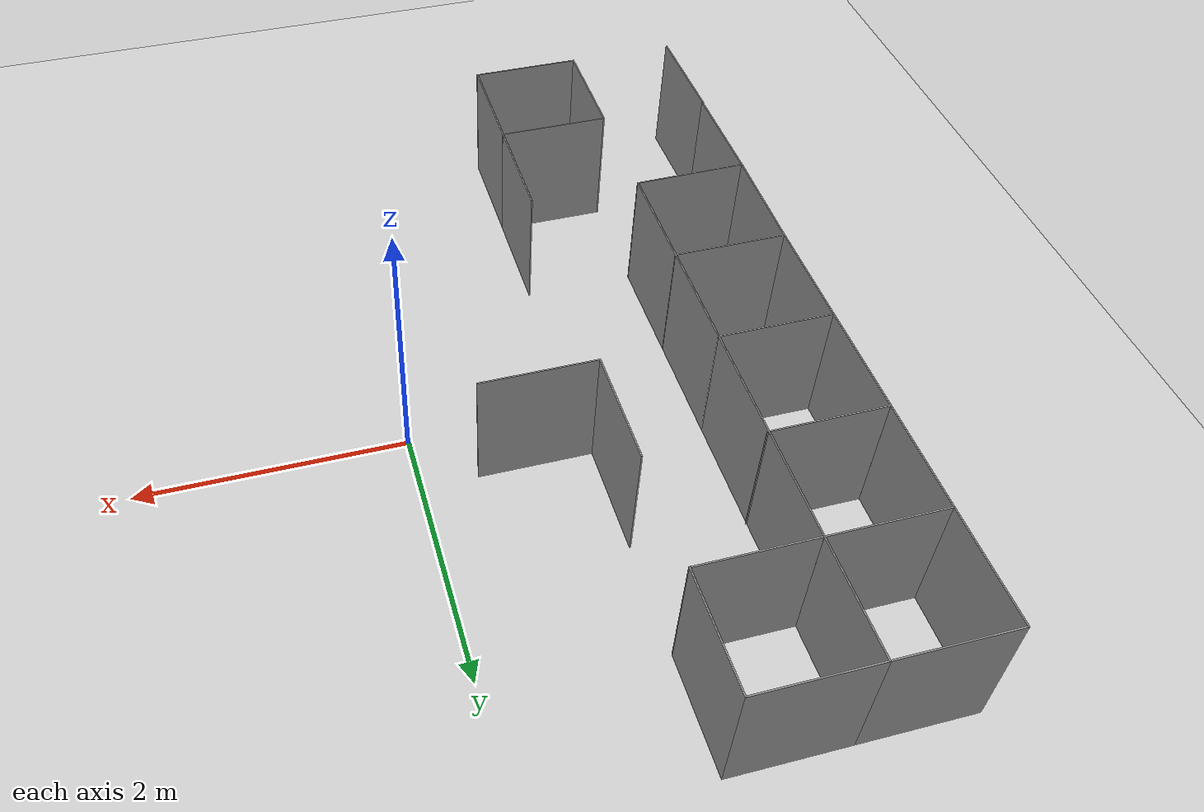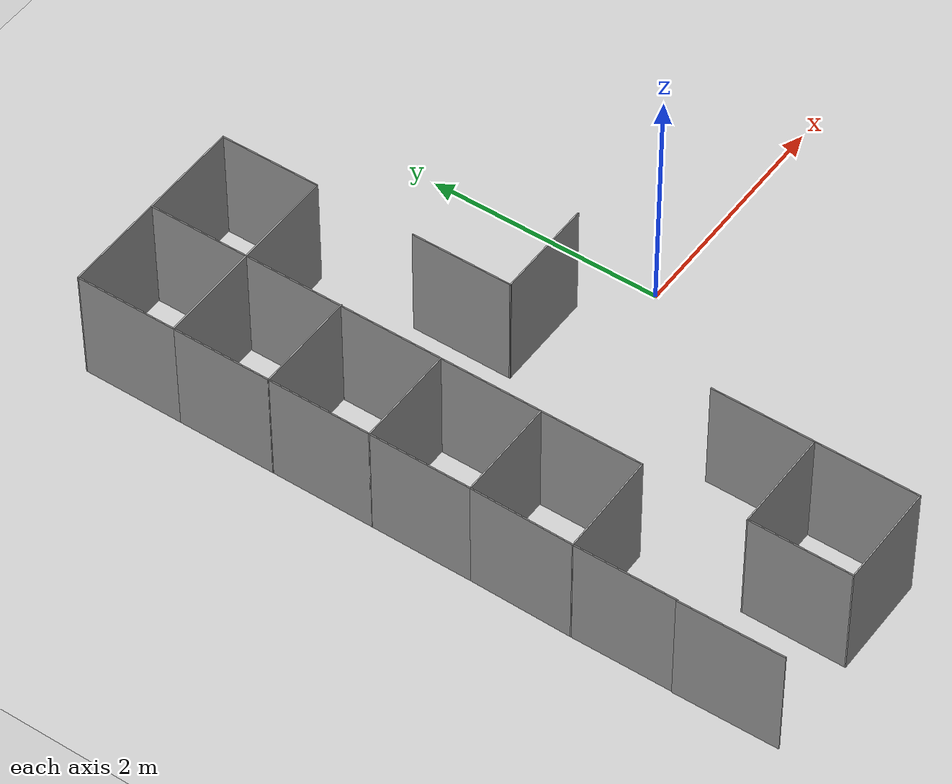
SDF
<sdf version="1.7">
 <world name="default">
  <include><uri>model://sun</uri></include>
  <include><uri>model://ground_plane</uri></include>
  <model name="Lab1">
   <link name="Wall_100">
    <pose>-2.54637 0.424965 0 0 -0 0</pose>
    <visual name="Wall_100_Visual">
     <pose>0 0 0.5 0 -0 0</pose>
     <geometry><box><size>0.86 0.01 1</size></box></geometry>
     <material>
      <script><uri>file://media/materials/scripts/gazebo.material</uri><name>Gazebo/Grey</name></script>
      <ambient>1 1 1 1</ambient>
      <shader type="pixel"/>
     </material>
     <meta><layer>0</layer></meta>
    </visual>
    <collision name="Wall_100_Collision">
     <pose>0 0 0.5 0 -0 0</pose>
     <geometry><box><size>0.86 0.01 1</size></box></geometry>
     <surface>
      <friction>
       <ode><mu>1</mu><mu2>1</mu2><fdir1>0 0 0</fdir1><slip1>0</slip1><slip2>0</slip2></ode>
       <torsional>
        <coefficient>1</coefficient>
        <patch_radius>0</patch_radius>
        <surface_radius>0</surface_radius>
        <use_patch_radius>1</use_patch_radius>
        <ode><slip>0</slip></ode>
       </torsional>
      </friction>
      <bounce><restitution_coefficient>0</restitution_coefficient><threshold>1e+06</threshold></bounce>
      <contact>
       <collide_without_contact>0</collide_without_contact>
       <collide_without_contact_bitmask>1</collide_without_contact_bitmask>
       <collide_bitmask>1</collide_bitmask>
       <ode>
        <soft_cfm>0</soft_cfm>
        <soft_erp>0.2</soft_erp>
        <kp>1e+13</kp>
        <kd>1</kd>
        <max_vel>0.01</max_vel>
        <min_depth>0</min_depth>
       </ode>
       <bullet>
        <split_impulse>1</split_impulse>
        <split_impulse_penetration_threshold>-0.01</split_impulse_penetration_threshold>
        <soft_cfm>0</soft_cfm>
        <soft_erp>0.2</soft_erp>
        <kp>1e+13</kp>
        <kd>1</kd>
       </bullet>
      </contact>
     </surface>
    </collision>
   </link>
   <link name="Wall_101">
    <pose>-2.12161 0.858205 0 0 -0 1.57135</pose>
    <visual name="Wall_101_Visual">
     <pose>0 0 0.5 0 -0 0</pose>
     <geometry><box><size>0.876839 0.01 1</size></box></geometry>
     <material>
      <script><uri>file://media/materials/scripts/gazebo.material</uri><name>Gazebo/Grey</name></script>
      <ambient>1 1 1 1</ambient>
      <shader type="pixel"/>
     </material>
     <meta><layer>0</layer></meta>
    </visual>
    <collision name="Wall_101_Collision">
     <pose>0 0 0.5 0 -0 0</pose>
     <geometry><box><size>0.876839 0.01 1</size></box></geometry>
     <surface>
      <friction>
       <ode><mu>1</mu><mu2>1</mu2><fdir1>0 0 0</fdir1><slip1>0</slip1><slip2>0</slip2></ode>
       <torsional>
        <coefficient>1</coefficient>
        <patch_radius>0</patch_radius>
        <surface_radius>0</surface_radius>
        <use_patch_radius>1</use_patch_radius>
        <ode><slip>0</slip></ode>
       </torsional>
      </friction>
      <bounce><restitution_coefficient>0</restitution_coefficient><threshold>1e+06</threshold></bounce>
      <contact>
       <collide_without_contact>0</collide_without_contact>
       <collide_without_contact_bitmask>1</collide_without_contact_bitmask>
       <collide_bitmask>1</collide_bitmask>
       <ode>
        <soft_cfm>0</soft_cfm>
        <soft_erp>0.2</soft_erp>
        <kp>1e+13</kp>
        <kd>1</kd>
        <max_vel>0.01</max_vel>
        <min_depth>0</min_depth>
       </ode>
       <bullet>
        <split_impulse>1</split_impulse>
        <split_impulse_penetration_threshold>-0.01</split_impulse_penetration_threshold>
        <soft_cfm>0</soft_cfm>
        <soft_erp>0.2</soft_erp>
        <kp>1e+13</kp>
        <kd>1</kd>
       </bullet>
      </contact>
     </surface>
    </collision>
   </link>
   <link name="Wall_103">
    <pose>-1.27137 0.849965 0 0 0 -1.5708</pose>
    <visual name="Wall_103_Visual">
     <pose>0 0 0.5 0 -0 0</pose>
     <geometry><box><size>0.86 0.01 1</size></box></geometry>
     <material>
      <script><uri>file://media/materials/scripts/gazebo.material</uri><name>Gazebo/Grey</name></script>
      <ambient>1 1 1 1</ambient>
      <shader type="pixel"/>
     </material>
     <meta><layer>0</layer></meta>
    </visual>
    <collision name="Wall_103_Collision">
     <pose>0 0 0.5 0 -0 0</pose>
     <geometry><box><size>0.86 0.01 1</size></box></geometry>
     <surface>
      <friction>
       <ode><mu>1</mu><mu2>1</mu2><fdir1>0 0 0</fdir1><slip1>0</slip1><slip2>0</slip2></ode>
       <torsional>
        <coefficient>1</coefficient>
        <patch_radius>0</patch_radius>
        <surface_radius>0</surface_radius>
        <use_patch_radius>1</use_patch_radius>
        <ode><slip>0</slip></ode>
       </torsional>
      </friction>
      <bounce><restitution_coefficient>0</restitution_coefficient><threshold>1e+06</threshold></bounce>
      <contact>
       <collide_without_contact>0</collide_without_contact>
       <collide_without_contact_bitmask>1</collide_without_contact_bitmask>
       <collide_bitmask>1</collide_bitmask>
       <ode>
        <soft_cfm>0</soft_cfm>
        <soft_erp>0.2</soft_erp>
        <kp>1e+13</kp>
        <kd>1</kd>
        <max_vel>0.01</max_vel>
        <min_depth>0</min_depth>
       </ode>
       <bullet>
        <split_impulse>1</split_impulse>
        <split_impulse_penetration_threshold>-0.01</split_impulse_penetration_threshold>
        <soft_cfm>0</soft_cfm>
        <soft_erp>0.2</soft_erp>
        <kp>1e+13</kp>
        <kd>1</kd>
       </bullet>
      </contact>
     </surface>
    </collision>
   </link>
   <link name="Wall_104">
    <pose>-0.846372 0.424965 0 0 -0 0</pose>
    <visual name="Wall_104_Visual">
     <pose>0 0 0.5 0 -0 0</pose>
     <geometry><box><size>0.86 0.01 1</size></box></geometry>
     <material>
      <script><uri>file://media/materials/scripts/gazebo.material</uri><name>Gazebo/Grey</name></script>
      <ambient>1 1 1 1</ambient>
      <shader type="pixel"/>
     </material>
     <meta><layer>0</layer></meta>
    </visual>
    <collision name="Wall_104_Collision">
     <pose>0 0 0.5 0 -0 0</pose>
     <geometry><box><size>0.86 0.01 1</size></box></geometry>
     <surface>
      <friction>
       <ode><mu>1</mu><mu2>1</mu2><fdir1>0 0 0</fdir1><slip1>0</slip1><slip2>0</slip2></ode>
       <torsional>
        <coefficient>1</coefficient>
        <patch_radius>0</patch_radius>
        <surface_radius>0</surface_radius>
        <use_patch_radius>1</use_patch_radius>
        <ode><slip>0</slip></ode>
       </torsional>
      </friction>
      <bounce><restitution_coefficient>0</restitution_coefficient><threshold>1e+06</threshold></bounce>
      <contact>
       <collide_without_contact>0</collide_without_contact>
       <collide_without_contact_bitmask>1</collide_without_contact_bitmask>
       <collide_bitmask>1</collide_bitmask>
       <ode>
        <soft_cfm>0</soft_cfm>
        <soft_erp>0.2</soft_erp>
        <kp>1e+13</kp>
        <kd>1</kd>
        <max_vel>0.01</max_vel>
        <min_depth>0</min_depth>
       </ode>
       <bullet>
        <split_impulse>1</split_impulse>
        <split_impulse_penetration_threshold>-0.01</split_impulse_penetration_threshold>
        <soft_cfm>0</soft_cfm>
        <soft_erp>0.2</soft_erp>
        <kp>1e+13</kp>
        <kd>1</kd>
       </bullet>
      </contact>
     </surface>
    </collision>
   </link>
   <link name="Wall_125">
    <pose>-1.69637 2.12496 0 0 -0 3.14159</pose>
    <visual name="Wall_125_Visual">
     <pose>0 0 0.5 0 -0 0</pose>
     <geometry><box><size>0.86 0.01 1</size></box></geometry>
     <material>
      <script><uri>file://media/materials/scripts/gazebo.material</uri><name>Gazebo/Grey</name></script>
      <ambient>1 1 1 1</ambient>
      <shader type="pixel"/>
     </material>
     <meta><layer>0</layer></meta>
    </visual>
    <collision name="Wall_125_Collision">
     <pose>0 0 0.5 0 -0 0</pose>
     <geometry><box><size>0.86 0.01 1</size></box></geometry>
     <surface>
      <friction>
       <ode><mu>1</mu><mu2>1</mu2><fdir1>0 0 0</fdir1><slip1>0</slip1><slip2>0</slip2></ode>
       <torsional>
        <coefficient>1</coefficient>
        <patch_radius>0</patch_radius>
        <surface_radius>0</surface_radius>
        <use_patch_radius>1</use_patch_radius>
        <ode><slip>0</slip></ode>
       </torsional>
      </friction>
      <bounce><restitution_coefficient>0</restitution_coefficient><threshold>1e+06</threshold></bounce>
      <contact>
       <collide_without_contact>0</collide_without_contact>
       <collide_without_contact_bitmask>1</collide_without_contact_bitmask>
       <collide_bitmask>1</collide_bitmask>
       <ode>
        <soft_cfm>0</soft_cfm>
        <soft_erp>0.2</soft_erp>
        <kp>1e+13</kp>
        <kd>1</kd>
        <max_vel>0.01</max_vel>
        <min_depth>0</min_depth>
       </ode>
       <bullet>
        <split_impulse>1</split_impulse>
        <split_impulse_penetration_threshold>-0.01</split_impulse_penetration_threshold>
        <soft_cfm>0</soft_cfm>
        <soft_erp>0.2</soft_erp>
        <kp>1e+13</kp>
        <kd>1</kd>
       </bullet>
      </contact>
     </surface>
    </collision>
   </link>
   <link name="Wall_126">
    <pose>-2.12161 1.7082 0 0 0 -1.57137</pose>
    <visual name="Wall_126_Visual">
     <pose>0 0 0.5 0 -0 0</pose>
     <geometry><box><size>0.843894 0.01 1</size></box></geometry>
     <material>
      <script><uri>file://media/materials/scripts/gazebo.material</uri><name>Gazebo/Grey</name></script>
      <ambient>1 1 1 1</ambient>
      <shader type="pixel"/>
     </material>
     <meta><layer>0</layer></meta>
    </visual>
    <collision name="Wall_126_Collision">
     <pose>0 0 0.5 0 -0 0</pose>
     <geometry><box><size>0.843894 0.01 1</size></box></geometry>
     <surface>
      <friction>
       <ode><mu>1</mu><mu2>1</mu2><fdir1>0 0 0</fdir1><slip1>0</slip1><slip2>0</slip2></ode>
       <torsional>
        <coefficient>1</coefficient>
        <patch_radius>0</patch_radius>
        <surface_radius>0</surface_radius>
        <use_patch_radius>1</use_patch_radius>
        <ode><slip>0</slip></ode>
       </torsional>
      </friction>
      <bounce><restitution_coefficient>0</restitution_coefficient><threshold>1e+06</threshold></bounce>
      <contact>
       <collide_without_contact>0</collide_without_contact>
       <collide_without_contact_bitmask>1</collide_without_contact_bitmask>
       <collide_bitmask>1</collide_bitmask>
       <ode>
        <soft_cfm>0</soft_cfm>
        <soft_erp>0.2</soft_erp>
        <kp>1e+13</kp>
        <kd>1</kd>
        <max_vel>0.01</max_vel>
        <min_depth>0</min_depth>
       </ode>
       <bullet>
        <split_impulse>1</split_impulse>
        <split_impulse_penetration_threshold>-0.01</split_impulse_penetration_threshold>
        <soft_cfm>0</soft_cfm>
        <soft_erp>0.2</soft_erp>
        <kp>1e+13</kp>
        <kd>1</kd>
       </bullet>
      </contact>
     </surface>
    </collision>
   </link>
   <link name="Wall_127">
    <pose>-2.54237 1.2912 0 0 0 -3.14103</pose>
    <visual name="Wall_127_Visual">
     <pose>0 0 0.5 0 -0 0</pose>
     <geometry><box><size>0.868 0.01 1</size></box></geometry>
     <material>
      <script><uri>file://media/materials/scripts/gazebo.material</uri><name>Gazebo/Grey</name></script>
      <ambient>1 1 1 1</ambient>
      <shader type="pixel"/>
     </material>
     <meta><layer>0</layer></meta>
    </visual>
    <collision name="Wall_127_Collision">
     <pose>0 0 0.5 0 -0 0</pose>
     <geometry><box><size>0.868 0.01 1</size></box></geometry>
     <surface>
      <friction>
       <ode><mu>1</mu><mu2>1</mu2><fdir1>0 0 0</fdir1><slip1>0</slip1><slip2>0</slip2></ode>
       <torsional>
        <coefficient>1</coefficient>
        <patch_radius>0</patch_radius>
        <surface_radius>0</surface_radius>
        <use_patch_radius>1</use_patch_radius>
        <ode><slip>0</slip></ode>
       </torsional>
      </friction>
      <bounce><restitution_coefficient>0</restitution_coefficient><threshold>1e+06</threshold></bounce>
      <contact>
       <collide_without_contact>0</collide_without_contact>
       <collide_without_contact_bitmask>1</collide_without_contact_bitmask>
       <collide_bitmask>1</collide_bitmask>
       <ode>
        <soft_cfm>0</soft_cfm>
        <soft_erp>0.2</soft_erp>
        <kp>1e+13</kp>
        <kd>1</kd>
        <max_vel>0.01</max_vel>
        <min_depth>0</min_depth>
       </ode>
       <bullet>
        <split_impulse>1</split_impulse>
        <split_impulse_penetration_threshold>-0.01</split_impulse_penetration_threshold>
        <soft_cfm>0</soft_cfm>
        <soft_erp>0.2</soft_erp>
        <kp>1e+13</kp>
        <kd>1</kd>
       </bullet>
      </contact>
     </surface>
    </collision>
   </link>
   <link name="Wall_129">
    <pose>-2.54637 2.12496 0 0 -0 0</pose>
    <visual name="Wall_129_Visual">
     <pose>0 0 0.5 0 -0 0</pose>
     <geometry><box><size>0.86 0.01 1</size></box></geometry>
     <material>
      <script><uri>file://media/materials/scripts/gazebo.material</uri><name>Gazebo/Grey</name></script>
      <ambient>1 1 1 1</ambient>
      <shader type="pixel"/>
     </material>
     <meta><layer>0</layer></meta>
    </visual>
    <collision name="Wall_129_Collision">
     <pose>0 0 0.5 0 -0 0</pose>
     <geometry><box><size>0.86 0.01 1</size></box></geometry>
     <surface>
      <friction>
       <ode><mu>1</mu><mu2>1</mu2><fdir1>0 0 0</fdir1><slip1>0</slip1><slip2>0</slip2></ode>
       <torsional>
        <coefficient>1</coefficient>
        <patch_radius>0</patch_radius>
        <surface_radius>0</surface_radius>
        <use_patch_radius>1</use_patch_radius>
        <ode><slip>0</slip></ode>
       </torsional>
      </friction>
      <bounce><restitution_coefficient>0</restitution_coefficient><threshold>1e+06</threshold></bounce>
      <contact>
       <collide_without_contact>0</collide_without_contact>
       <collide_without_contact_bitmask>1</collide_without_contact_bitmask>
       <collide_bitmask>1</collide_bitmask>
       <ode>
        <soft_cfm>0</soft_cfm>
        <soft_erp>0.2</soft_erp>
        <kp>1e+13</kp>
        <kd>1</kd>
        <max_vel>0.01</max_vel>
        <min_depth>0</min_depth>
       </ode>
       <bullet>
        <split_impulse>1</split_impulse>
        <split_impulse_penetration_threshold>-0.01</split_impulse_penetration_threshold>
        <soft_cfm>0</soft_cfm>
        <soft_erp>0.2</soft_erp>
        <kp>1e+13</kp>
        <kd>1</kd>
       </bullet>
      </contact>
     </surface>
    </collision>
   </link>
   <link name="Wall_130">
    <pose>-2.12137 2.54996 0 0 -0 1.5708</pose>
    <visual name="Wall_130_Visual">
     <pose>0 0 0.5 0 -0 0</pose>
     <geometry><box><size>0.86 0.01 1</size></box></geometry>
     <material>
      <script><uri>file://media/materials/scripts/gazebo.material</uri><name>Gazebo/Grey</name></script>
      <ambient>1 1 1 1</ambient>
      <shader type="pixel"/>
     </material>
     <meta><layer>0</layer></meta>
    </visual>
    <collision name="Wall_130_Collision">
     <pose>0 0 0.5 0 -0 0</pose>
     <geometry><box><size>0.86 0.01 1</size></box></geometry>
     <surface>
      <friction>
       <ode><mu>1</mu><mu2>1</mu2><fdir1>0 0 0</fdir1><slip1>0</slip1><slip2>0</slip2></ode>
       <torsional>
        <coefficient>1</coefficient>
        <patch_radius>0</patch_radius>
        <surface_radius>0</surface_radius>
        <use_patch_radius>1</use_patch_radius>
        <ode><slip>0</slip></ode>
       </torsional>
      </friction>
      <bounce><restitution_coefficient>0</restitution_coefficient><threshold>1e+06</threshold></bounce>
      <contact>
       <collide_without_contact>0</collide_without_contact>
       <collide_without_contact_bitmask>1</collide_without_contact_bitmask>
       <collide_bitmask>1</collide_bitmask>
       <ode>
        <soft_cfm>0</soft_cfm>
        <soft_erp>0.2</soft_erp>
        <kp>1e+13</kp>
        <kd>1</kd>
        <max_vel>0.01</max_vel>
        <min_depth>0</min_depth>
       </ode>
       <bullet>
        <split_impulse>1</split_impulse>
        <split_impulse_penetration_threshold>-0.01</split_impulse_penetration_threshold>
        <soft_cfm>0</soft_cfm>
        <soft_erp>0.2</soft_erp>
        <kp>1e+13</kp>
        <kd>1</kd>
       </bullet>
      </contact>
     </surface>
    </collision>
   </link>
   <link name="Wall_132">
    <pose>-1.27137 2.54996 0 0 0 -1.5708</pose>
    <visual name="Wall_132_Visual">
     <pose>0 0 0.5 0 -0 0</pose>
     <geometry><box><size>0.86 0.01 1</size></box></geometry>
     <material>
      <script><uri>file://media/materials/scripts/gazebo.material</uri><name>Gazebo/Grey</name></script>
      <ambient>1 1 1 1</ambient>
      <shader type="pixel"/>
     </material>
     <meta><layer>0</layer></meta>
    </visual>
    <collision name="Wall_132_Collision">
     <pose>0 0 0.5 0 -0 0</pose>
     <geometry><box><size>0.86 0.01 1</size></box></geometry>
     <surface>
      <friction>
       <ode><mu>1</mu><mu2>1</mu2><fdir1>0 0 0</fdir1><slip1>0</slip1><slip2>0</slip2></ode>
       <torsional>
        <coefficient>1</coefficient>
        <patch_radius>0</patch_radius>
        <surface_radius>0</surface_radius>
        <use_patch_radius>1</use_patch_radius>
        <ode><slip>0</slip></ode>
       </torsional>
      </friction>
      <bounce><restitution_coefficient>0</restitution_coefficient><threshold>1e+06</threshold></bounce>
      <contact>
       <collide_without_contact>0</collide_without_contact>
       <collide_without_contact_bitmask>1</collide_without_contact_bitmask>
       <collide_bitmask>1</collide_bitmask>
       <ode>
        <soft_cfm>0</soft_cfm>
        <soft_erp>0.2</soft_erp>
        <kp>1e+13</kp>
        <kd>1</kd>
        <max_vel>0.01</max_vel>
        <min_depth>0</min_depth>
       </ode>
       <bullet>
        <split_impulse>1</split_impulse>
        <split_impulse_penetration_threshold>-0.01</split_impulse_penetration_threshold>
        <soft_cfm>0</soft_cfm>
        <soft_erp>0.2</soft_erp>
        <kp>1e+13</kp>
        <kd>1</kd>
       </bullet>
      </contact>
     </surface>
    </collision>
   </link>
   <link name="Wall_148">
    <pose>-1.69637 2.97497 0 0 -0 3.14159</pose>
    <visual name="Wall_148_Visual">
     <pose>0 0 0.5 0 -0 0</pose>
     <geometry><box><size>0.86 0.01 1</size></box></geometry>
     <material>
      <script><uri>file://media/materials/scripts/gazebo.material</uri><name>Gazebo/Grey</name></script>
      <ambient>1 1 1 1</ambient>
      <shader type="pixel"/>
     </material>
     <meta><layer>0</layer></meta>
    </visual>
    <collision name="Wall_148_Collision">
     <pose>0 0 0.5 0 -0 0</pose>
     <geometry><box><size>0.86 0.01 1</size></box></geometry>
     <surface>
      <friction>
       <ode><mu>1</mu><mu2>1</mu2><fdir1>0 0 0</fdir1><slip1>0</slip1><slip2>0</slip2></ode>
       <torsional>
        <coefficient>1</coefficient>
        <patch_radius>0</patch_radius>
        <surface_radius>0</surface_radius>
        <use_patch_radius>1</use_patch_radius>
        <ode><slip>0</slip></ode>
       </torsional>
      </friction>
      <bounce><restitution_coefficient>0</restitution_coefficient><threshold>1e+06</threshold></bounce>
      <contact>
       <collide_without_contact>0</collide_without_contact>
       <collide_without_contact_bitmask>1</collide_without_contact_bitmask>
       <collide_bitmask>1</collide_bitmask>
       <ode>
        <soft_cfm>0</soft_cfm>
        <soft_erp>0.2</soft_erp>
        <kp>1e+13</kp>
        <kd>1</kd>
        <max_vel>0.01</max_vel>
        <min_depth>0</min_depth>
       </ode>
       <bullet>
        <split_impulse>1</split_impulse>
        <split_impulse_penetration_threshold>-0.01</split_impulse_penetration_threshold>
        <soft_cfm>0</soft_cfm>
        <soft_erp>0.2</soft_erp>
        <kp>1e+13</kp>
        <kd>1</kd>
       </bullet>
      </contact>
     </surface>
    </collision>
   </link>
   <link name="Wall_149">
    <pose>-2.54637 2.97497 0 0 -0 3.14159</pose>
    <visual name="Wall_149_Visual">
     <pose>0 0 0.5 0 -0 0</pose>
     <geometry><box><size>0.86 0.01 1</size></box></geometry>
     <material>
      <script><uri>file://media/materials/scripts/gazebo.material</uri><name>Gazebo/Grey</name></script>
      <ambient>1 1 1 1</ambient>
      <shader type="pixel"/>
     </material>
     <meta><layer>0</layer></meta>
    </visual>
    <collision name="Wall_149_Collision">
     <pose>0 0 0.5 0 -0 0</pose>
     <geometry><box><size>0.86 0.01 1</size></box></geometry>
     <surface>
      <friction>
       <ode><mu>1</mu><mu2>1</mu2><fdir1>0 0 0</fdir1><slip1>0</slip1><slip2>0</slip2></ode>
       <torsional>
        <coefficient>1</coefficient>
        <patch_radius>0</patch_radius>
        <surface_radius>0</surface_radius>
        <use_patch_radius>1</use_patch_radius>
        <ode><slip>0</slip></ode>
       </torsional>
      </friction>
      <bounce><restitution_coefficient>0</restitution_coefficient><threshold>1e+06</threshold></bounce>
      <contact>
       <collide_without_contact>0</collide_without_contact>
       <collide_without_contact_bitmask>1</collide_without_contact_bitmask>
       <collide_bitmask>1</collide_bitmask>
       <ode>
        <soft_cfm>0</soft_cfm>
        <soft_erp>0.2</soft_erp>
        <kp>1e+13</kp>
        <kd>1</kd>
        <max_vel>0.01</max_vel>
        <min_depth>0</min_depth>
       </ode>
       <bullet>
        <split_impulse>1</split_impulse>
        <split_impulse_penetration_threshold>-0.01</split_impulse_penetration_threshold>
        <soft_cfm>0</soft_cfm>
        <soft_erp>0.2</soft_erp>
        <kp>1e+13</kp>
        <kd>1</kd>
       </bullet>
      </contact>
     </surface>
    </collision>
   </link>
   <link name="Wall_150">
    <pose>-2.97137 2.54996 0 0 0 -1.5708</pose>
    <visual name="Wall_150_Visual">
     <pose>0 0 0.5 0 -0 0</pose>
     <geometry><box><size>0.86 0.01 1</size></box></geometry>
     <material>
      <script><uri>file://media/materials/scripts/gazebo.material</uri><name>Gazebo/Grey</name></script>
      <ambient>1 1 1 1</ambient>
      <shader type="pixel"/>
     </material>
     <meta><layer>0</layer></meta>
    </visual>
    <collision name="Wall_150_Collision">
     <pose>0 0 0.5 0 -0 0</pose>
     <geometry><box><size>0.86 0.01 1</size></box></geometry>
     <surface>
      <friction>
       <ode><mu>1</mu><mu2>1</mu2><fdir1>0 0 0</fdir1><slip1>0</slip1><slip2>0</slip2></ode>
       <torsional>
        <coefficient>1</coefficient>
        <patch_radius>0</patch_radius>
        <surface_radius>0</surface_radius>
        <use_patch_radius>1</use_patch_radius>
        <ode><slip>0</slip></ode>
       </torsional>
      </friction>
      <bounce><restitution_coefficient>0</restitution_coefficient><threshold>1e+06</threshold></bounce>
      <contact>
       <collide_without_contact>0</collide_without_contact>
       <collide_without_contact_bitmask>1</collide_without_contact_bitmask>
       <collide_bitmask>1</collide_bitmask>
       <ode>
        <soft_cfm>0</soft_cfm>
        <soft_erp>0.2</soft_erp>
        <kp>1e+13</kp>
        <kd>1</kd>
        <max_vel>0.01</max_vel>
        <min_depth>0</min_depth>
       </ode>
       <bullet>
        <split_impulse>1</split_impulse>
        <split_impulse_penetration_threshold>-0.01</split_impulse_penetration_threshold>
        <soft_cfm>0</soft_cfm>
        <soft_erp>0.2</soft_erp>
        <kp>1e+13</kp>
        <kd>1</kd>
       </bullet>
      </contact>
     </surface>
    </collision>
   </link>
   <link name="Wall_151">
    <pose>-2.97137 1.70796 0 0 0 -1.5708</pose>
    <visual name="Wall_151_Visual">
     <pose>0 0 0.5 0 -0 0</pose>
     <geometry><box><size>0.84352 0.01 1</size></box></geometry>
     <material>
      <script><uri>file://media/materials/scripts/gazebo.material</uri><name>Gazebo/Grey</name></script>
      <ambient>1 1 1 1</ambient>
      <shader type="pixel"/>
     </material>
     <meta><layer>0</layer></meta>
    </visual>
    <collision name="Wall_151_Collision">
     <pose>0 0 0.5 0 -0 0</pose>
     <geometry><box><size>0.84352 0.01 1</size></box></geometry>
     <surface>
      <friction>
       <ode><mu>1</mu><mu2>1</mu2><fdir1>0 0 0</fdir1><slip1>0</slip1><slip2>0</slip2></ode>
       <torsional>
        <coefficient>1</coefficient>
        <patch_radius>0</patch_radius>
        <surface_radius>0</surface_radius>
        <use_patch_radius>1</use_patch_radius>
        <ode><slip>0</slip></ode>
       </torsional>
      </friction>
      <bounce><restitution_coefficient>0</restitution_coefficient><threshold>1e+06</threshold></bounce>
      <contact>
       <collide_without_contact>0</collide_without_contact>
       <collide_without_contact_bitmask>1</collide_without_contact_bitmask>
       <collide_bitmask>1</collide_bitmask>
       <ode>
        <soft_cfm>0</soft_cfm>
        <soft_erp>0.2</soft_erp>
        <kp>1e+13</kp>
        <kd>1</kd>
        <max_vel>0.01</max_vel>
        <min_depth>0</min_depth>
       </ode>
       <bullet>
        <split_impulse>1</split_impulse>
        <split_impulse_penetration_threshold>-0.01</split_impulse_penetration_threshold>
        <soft_cfm>0</soft_cfm>
        <soft_erp>0.2</soft_erp>
        <kp>1e+13</kp>
        <kd>1</kd>
       </bullet>
      </contact>
     </surface>
    </collision>
   </link>
   <link name="Wall_152">
    <pose>-2.97137 0.857965 0 0 0 -1.5708</pose>
    <visual name="Wall_152_Visual">
     <pose>0 0 0.5 0 -0 0</pose>
     <geometry><box><size>0.876839 0.01 1</size></box></geometry>
     <material>
      <script><uri>file://media/materials/scripts/gazebo.material</uri><name>Gazebo/Grey</name></script>
      <ambient>1 1 1 1</ambient>
      <shader type="pixel"/>
     </material>
     <meta><layer>0</layer></meta>
    </visual>
    <collision name="Wall_152_Collision">
     <pose>0 0 0.5 0 -0 0</pose>
     <geometry><box><size>0.876839 0.01 1</size></box></geometry>
     <surface>
      <friction>
       <ode><mu>1</mu><mu2>1</mu2><fdir1>0 0 0</fdir1><slip1>0</slip1><slip2>0</slip2></ode>
       <torsional>
        <coefficient>1</coefficient>
        <patch_radius>0</patch_radius>
        <surface_radius>0</surface_radius>
        <use_patch_radius>1</use_patch_radius>
        <ode><slip>0</slip></ode>
       </torsional>
      </friction>
      <bounce><restitution_coefficient>0</restitution_coefficient><threshold>1e+06</threshold></bounce>
      <contact>
       <collide_without_contact>0</collide_without_contact>
       <collide_without_contact_bitmask>1</collide_without_contact_bitmask>
       <collide_bitmask>1</collide_bitmask>
       <ode>
        <soft_cfm>0</soft_cfm>
        <soft_erp>0.2</soft_erp>
        <kp>1e+13</kp>
        <kd>1</kd>
        <max_vel>0.01</max_vel>
        <min_depth>0</min_depth>
       </ode>
       <bullet>
        <split_impulse>1</split_impulse>
        <split_impulse_penetration_threshold>-0.01</split_impulse_penetration_threshold>
        <soft_cfm>0</soft_cfm>
        <soft_erp>0.2</soft_erp>
        <kp>1e+13</kp>
        <kd>1</kd>
       </bullet>
      </contact>
     </surface>
    </collision>
   </link>
   <link name="Wall_153">
    <pose>-2.97137 -3.5e-05 0 0 0 -1.5708</pose>
    <visual name="Wall_153_Visual">
     <pose>0 0 0.5 0 -0 0</pose>
     <geometry><box><size>0.86 0.01 1</size></box></geometry>
     <material>
      <script><uri>file://media/materials/scripts/gazebo.material</uri><name>Gazebo/Grey</name></script>
      <ambient>1 1 1 1</ambient>
      <shader type="pixel"/>
     </material>
     <meta><layer>0</layer></meta>
    </visual>
    <collision name="Wall_153_Collision">
     <pose>0 0 0.5 0 -0 0</pose>
     <geometry><box><size>0.86 0.01 1</size></box></geometry>
     <surface>
      <friction>
       <ode><mu>1</mu><mu2>1</mu2><fdir1>0 0 0</fdir1><slip1>0</slip1><slip2>0</slip2></ode>
       <torsional>
        <coefficient>1</coefficient>
        <patch_radius>0</patch_radius>
        <surface_radius>0</surface_radius>
        <use_patch_radius>1</use_patch_radius>
        <ode><slip>0</slip></ode>
       </torsional>
      </friction>
      <bounce><restitution_coefficient>0</restitution_coefficient><threshold>1e+06</threshold></bounce>
      <contact>
       <collide_without_contact>0</collide_without_contact>
       <collide_without_contact_bitmask>1</collide_without_contact_bitmask>
       <collide_bitmask>1</collide_bitmask>
       <ode>
        <soft_cfm>0</soft_cfm>
        <soft_erp>0.2</soft_erp>
        <kp>1e+13</kp>
        <kd>1</kd>
        <max_vel>0.01</max_vel>
        <min_depth>0</min_depth>
       </ode>
       <bullet>
        <split_impulse>1</split_impulse>
        <split_impulse_penetration_threshold>-0.01</split_impulse_penetration_threshold>
        <soft_cfm>0</soft_cfm>
        <soft_erp>0.2</soft_erp>
        <kp>1e+13</kp>
        <kd>1</kd>
       </bullet>
      </contact>
     </surface>
    </collision>
   </link>
   <link name="Wall_154">
    <pose>-2.97687 -0.852535 0 0 0 -1.58366</pose>
    <visual name="Wall_154_Visual">
     <pose>0 0 0.5 0 -0 0</pose>
     <geometry><box><size>0.865 0.01 1</size></box></geometry>
     <material>
      <script><uri>file://media/materials/scripts/gazebo.material</uri><name>Gazebo/Grey</name></script>
      <ambient>1 1 1 1</ambient>
      <shader type="pixel"/>
     </material>
     <meta><layer>0</layer></meta>
    </visual>
    <collision name="Wall_154_Collision">
     <pose>0 0 0.5 0 -0 0</pose>
     <geometry><box><size>0.865 0.01 1</size></box></geometry>
     <surface>
      <friction>
       <ode><mu>1</mu><mu2>1</mu2><fdir1>0 0 0</fdir1><slip1>0</slip1><slip2>0</slip2></ode>
       <torsional>
        <coefficient>1</coefficient>
        <patch_radius>0</patch_radius>
        <surface_radius>0</surface_radius>
        <use_patch_radius>1</use_patch_radius>
        <ode><slip>0</slip></ode>
       </torsional>
      </friction>
      <bounce><restitution_coefficient>0</restitution_coefficient><threshold>1e+06</threshold></bounce>
      <contact>
       <collide_without_contact>0</collide_without_contact>
       <collide_without_contact_bitmask>1</collide_without_contact_bitmask>
       <collide_bitmask>1</collide_bitmask>
       <ode>
        <soft_cfm>0</soft_cfm>
        <soft_erp>0.2</soft_erp>
        <kp>1e+13</kp>
        <kd>1</kd>
        <max_vel>0.01</max_vel>
        <min_depth>0</min_depth>
       </ode>
       <bullet>
        <split_impulse>1</split_impulse>
        <split_impulse_penetration_threshold>-0.01</split_impulse_penetration_threshold>
        <soft_cfm>0</soft_cfm>
        <soft_erp>0.2</soft_erp>
        <kp>1e+13</kp>
        <kd>1</kd>
       </bullet>
      </contact>
     </surface>
    </collision>
   </link>
   <link name="Wall_155">
    <pose>-2.97968 -1.70003 0 0 0 -1.56438</pose>
    <visual name="Wall_155_Visual">
     <pose>0 0 0.5 0 -0 0</pose>
     <geometry><box><size>0.850094 0.01 1</size></box></geometry>
     <material>
      <script><uri>file://media/materials/scripts/gazebo.material</uri><name>Gazebo/Grey</name></script>
      <ambient>1 1 1 1</ambient>
      <shader type="pixel"/>
     </material>
     <meta><layer>0</layer></meta>
    </visual>
    <collision name="Wall_155_Collision">
     <pose>0 0 0.5 0 -0 0</pose>
     <geometry><box><size>0.850094 0.01 1</size></box></geometry>
     <surface>
      <friction>
       <ode><mu>1</mu><mu2>1</mu2><fdir1>0 0 0</fdir1><slip1>0</slip1><slip2>0</slip2></ode>
       <torsional>
        <coefficient>1</coefficient>
        <patch_radius>0</patch_radius>
        <surface_radius>0</surface_radius>
        <use_patch_radius>1</use_patch_radius>
        <ode><slip>0</slip></ode>
       </torsional>
      </friction>
      <bounce><restitution_coefficient>0</restitution_coefficient><threshold>1e+06</threshold></bounce>
      <contact>
       <collide_without_contact>0</collide_without_contact>
       <collide_without_contact_bitmask>1</collide_without_contact_bitmask>
       <collide_bitmask>1</collide_bitmask>
       <ode>
        <soft_cfm>0</soft_cfm>
        <soft_erp>0.2</soft_erp>
        <kp>1e+13</kp>
        <kd>1</kd>
        <max_vel>0.01</max_vel>
        <min_depth>0</min_depth>
       </ode>
       <bullet>
        <split_impulse>1</split_impulse>
        <split_impulse_penetration_threshold>-0.01</split_impulse_penetration_threshold>
        <soft_cfm>0</soft_cfm>
        <soft_erp>0.2</soft_erp>
        <kp>1e+13</kp>
        <kd>1</kd>
       </bullet>
      </contact>
     </surface>
    </collision>
   </link>
   <link name="Wall_156">
    <pose>-2.97698 -2.54753 0 0 0 -1.55768</pose>
    <visual name="Wall_156_Visual">
     <pose>0 0 0.5 0 -0 0</pose>
     <geometry><box><size>0.865 0.01 1</size></box></geometry>
     <material>
      <script><uri>file://media/materials/scripts/gazebo.material</uri><name>Gazebo/Grey</name></script>
      <ambient>1 1 1 1</ambient>
      <shader type="pixel"/>
     </material>
     <meta><layer>0</layer></meta>
    </visual>
    <collision name="Wall_156_Collision">
     <pose>0 0 0.5 0 -0 0</pose>
     <geometry><box><size>0.865 0.01 1</size></box></geometry>
     <surface>
      <friction>
       <ode><mu>1</mu><mu2>1</mu2><fdir1>0 0 0</fdir1><slip1>0</slip1><slip2>0</slip2></ode>
       <torsional>
        <coefficient>1</coefficient>
        <patch_radius>0</patch_radius>
        <surface_radius>0</surface_radius>
        <use_patch_radius>1</use_patch_radius>
        <ode><slip>0</slip></ode>
       </torsional>
      </friction>
      <bounce><restitution_coefficient>0</restitution_coefficient><threshold>1e+06</threshold></bounce>
      <contact>
       <collide_without_contact>0</collide_without_contact>
       <collide_without_contact_bitmask>1</collide_without_contact_bitmask>
       <collide_bitmask>1</collide_bitmask>
       <ode>
        <soft_cfm>0</soft_cfm>
        <soft_erp>0.2</soft_erp>
        <kp>1e+13</kp>
        <kd>1</kd>
        <max_vel>0.01</max_vel>
        <min_depth>0</min_depth>
       </ode>
       <bullet>
        <split_impulse>1</split_impulse>
        <split_impulse_penetration_threshold>-0.01</split_impulse_penetration_threshold>
        <soft_cfm>0</soft_cfm>
        <soft_erp>0.2</soft_erp>
        <kp>1e+13</kp>
        <kd>1</kd>
       </bullet>
      </contact>
     </surface>
    </collision>
   </link>
   <link name="Wall_158">
    <pose>-1.69637 -2.97504 0 0 -0 0</pose>
    <visual name="Wall_158_Visual">
     <pose>0 0 0.5 0 -0 0</pose>
     <geometry><box><size>0.860147 0.01 1</size></box></geometry>
     <material>
      <script><uri>file://media/materials/scripts/gazebo.material</uri><name>Gazebo/Grey</name></script>
      <ambient>1 1 1 1</ambient>
      <shader type="pixel"/>
     </material>
     <meta><layer>0</layer></meta>
    </visual>
    <collision name="Wall_158_Collision">
     <pose>0 0 0.5 0 -0 0</pose>
     <geometry><box><size>0.860147 0.01 1</size></box></geometry>
     <surface>
      <friction>
       <ode><mu>1</mu><mu2>1</mu2><fdir1>0 0 0</fdir1><slip1>0</slip1><slip2>0</slip2></ode>
       <torsional>
        <coefficient>1</coefficient>
        <patch_radius>0</patch_radius>
        <surface_radius>0</surface_radius>
        <use_patch_radius>1</use_patch_radius>
        <ode><slip>0</slip></ode>
       </torsional>
      </friction>
      <bounce><restitution_coefficient>0</restitution_coefficient><threshold>1e+06</threshold></bounce>
      <contact>
       <collide_without_contact>0</collide_without_contact>
       <collide_without_contact_bitmask>1</collide_without_contact_bitmask>
       <collide_bitmask>1</collide_bitmask>
       <ode>
        <soft_cfm>0</soft_cfm>
        <soft_erp>0.2</soft_erp>
        <kp>1e+13</kp>
        <kd>1</kd>
        <max_vel>0.01</max_vel>
        <min_depth>0</min_depth>
       </ode>
       <bullet>
        <split_impulse>1</split_impulse>
        <split_impulse_penetration_threshold>-0.01</split_impulse_penetration_threshold>
        <soft_cfm>0</soft_cfm>
        <soft_erp>0.2</soft_erp>
        <kp>1e+13</kp>
        <kd>1</kd>
       </bullet>
      </contact>
     </surface>
    </collision>
   </link>
   <link name="Wall_45">
    <pose>-2.12137 -2.55053 0 0 -0 1.5708</pose>
    <visual name="Wall_45_Visual">
     <pose>0 0 0.5 0 -0 0</pose>
     <geometry><box><size>0.859 0.01 1</size></box></geometry>
     <material>
      <script><uri>file://media/materials/scripts/gazebo.material</uri><name>Gazebo/Grey</name></script>
      <ambient>1 1 1 1</ambient>
      <shader type="pixel"/>
     </material>
     <meta><layer>0</layer></meta>
    </visual>
    <collision name="Wall_45_Collision">
     <pose>0 0 0.5 0 -0 0</pose>
     <geometry><box><size>0.859 0.01 1</size></box></geometry>
     <surface>
      <friction>
       <ode><mu>1</mu><mu2>1</mu2><fdir1>0 0 0</fdir1><slip1>0</slip1><slip2>0</slip2></ode>
       <torsional>
        <coefficient>1</coefficient>
        <patch_radius>0</patch_radius>
        <surface_radius>0</surface_radius>
        <use_patch_radius>1</use_patch_radius>
        <ode><slip>0</slip></ode>
       </torsional>
      </friction>
      <bounce><restitution_coefficient>0</restitution_coefficient><threshold>1e+06</threshold></bounce>
      <contact>
       <collide_without_contact>0</collide_without_contact>
       <collide_without_contact_bitmask>1</collide_without_contact_bitmask>
       <collide_bitmask>1</collide_bitmask>
       <ode>
        <soft_cfm>0</soft_cfm>
        <soft_erp>0.2</soft_erp>
        <kp>1e+13</kp>
        <kd>1</kd>
        <max_vel>0.01</max_vel>
        <min_depth>0</min_depth>
       </ode>
       <bullet>
        <split_impulse>1</split_impulse>
        <split_impulse_penetration_threshold>-0.01</split_impulse_penetration_threshold>
        <soft_cfm>0</soft_cfm>
        <soft_erp>0.2</soft_erp>
        <kp>1e+13</kp>
        <kd>1</kd>
       </bullet>
      </contact>
     </surface>
    </collision>
   </link>
   <link name="Wall_46">
    <pose>-1.69637 -2.12554 0 0 -0 0.001176</pose>
    <visual name="Wall_46_Visual">
     <pose>0 0 0.5 0 -0 0</pose>
     <geometry><box><size>0.860014 0.01 1</size></box></geometry>
     <material>
      <script><uri>file://media/materials/scripts/gazebo.material</uri><name>Gazebo/Grey</name></script>
      <ambient>1 1 1 1</ambient>
      <shader type="pixel"/>
     </material>
     <meta><layer>0</layer></meta>
    </visual>
    <collision name="Wall_46_Collision">
     <pose>0 0 0.5 0 -0 0</pose>
     <geometry><box><size>0.860014 0.01 1</size></box></geometry>
     <surface>
      <friction>
       <ode><mu>1</mu><mu2>1</mu2><fdir1>0 0 0</fdir1><slip1>0</slip1><slip2>0</slip2></ode>
       <torsional>
        <coefficient>1</coefficient>
        <patch_radius>0</patch_radius>
        <surface_radius>0</surface_radius>
        <use_patch_radius>1</use_patch_radius>
        <ode><slip>0</slip></ode>
       </torsional>
      </friction>
      <bounce><restitution_coefficient>0</restitution_coefficient><threshold>1e+06</threshold></bounce>
      <contact>
       <collide_without_contact>0</collide_without_contact>
       <collide_without_contact_bitmask>1</collide_without_contact_bitmask>
       <collide_bitmask>1</collide_bitmask>
       <ode>
        <soft_cfm>0</soft_cfm>
        <soft_erp>0.2</soft_erp>
        <kp>1e+13</kp>
        <kd>1</kd>
        <max_vel>0.01</max_vel>
        <min_depth>0</min_depth>
       </ode>
       <bullet>
        <split_impulse>1</split_impulse>
        <split_impulse_penetration_threshold>-0.01</split_impulse_penetration_threshold>
        <soft_cfm>0</soft_cfm>
        <soft_erp>0.2</soft_erp>
        <kp>1e+13</kp>
        <kd>1</kd>
       </bullet>
      </contact>
     </surface>
    </collision>
   </link>
   <link name="Wall_47">
    <pose>-1.27137 -2.55003 0 0 0 -1.5708</pose>
    <visual name="Wall_47_Visual">
     <pose>0 0 0.5 0 -0 0</pose>
     <geometry><box><size>0.86 0.01 1</size></box></geometry>
     <material>
      <script><uri>file://media/materials/scripts/gazebo.material</uri><name>Gazebo/Grey</name></script>
      <ambient>1 1 1 1</ambient>
      <shader type="pixel"/>
     </material>
     <meta><layer>0</layer></meta>
    </visual>
    <collision name="Wall_47_Collision">
     <pose>0 0 0.5 0 -0 0</pose>
     <geometry><box><size>0.86 0.01 1</size></box></geometry>
     <surface>
      <friction>
       <ode><mu>1</mu><mu2>1</mu2><fdir1>0 0 0</fdir1><slip1>0</slip1><slip2>0</slip2></ode>
       <torsional>
        <coefficient>1</coefficient>
        <patch_radius>0</patch_radius>
        <surface_radius>0</surface_radius>
        <use_patch_radius>1</use_patch_radius>
        <ode><slip>0</slip></ode>
       </torsional>
      </friction>
      <bounce><restitution_coefficient>0</restitution_coefficient><threshold>1e+06</threshold></bounce>
      <contact>
       <collide_without_contact>0</collide_without_contact>
       <collide_without_contact_bitmask>1</collide_without_contact_bitmask>
       <collide_bitmask>1</collide_bitmask>
       <ode>
        <soft_cfm>0</soft_cfm>
        <soft_erp>0.2</soft_erp>
        <kp>1e+13</kp>
        <kd>1</kd>
        <max_vel>0.01</max_vel>
        <min_depth>0</min_depth>
       </ode>
       <bullet>
        <split_impulse>1</split_impulse>
        <split_impulse_penetration_threshold>-0.01</split_impulse_penetration_threshold>
        <soft_cfm>0</soft_cfm>
        <soft_erp>0.2</soft_erp>
        <kp>1e+13</kp>
        <kd>1</kd>
       </bullet>
      </contact>
     </surface>
    </collision>
   </link>
   <link name="Wall_67">
    <pose>-1.27137 -1.70003 0 0 -0 1.5708</pose>
    <visual name="Wall_67_Visual">
     <pose>0 0 0.5 0 -0 0</pose>
     <geometry><box><size>0.859555 0.01 1</size></box></geometry>
     <material>
      <script><uri>file://media/materials/scripts/gazebo.material</uri><name>Gazebo/Grey</name></script>
      <ambient>1 1 1 1</ambient>
      <shader type="pixel"/>
     </material>
     <meta><layer>0</layer></meta>
    </visual>
    <collision name="Wall_67_Collision">
     <pose>0 0 0.5 0 -0 0</pose>
     <geometry><box><size>0.859555 0.01 1</size></box></geometry>
     <surface>
      <friction>
       <ode><mu>1</mu><mu2>1</mu2><fdir1>0 0 0</fdir1><slip1>0</slip1><slip2>0</slip2></ode>
       <torsional>
        <coefficient>1</coefficient>
        <patch_radius>0</patch_radius>
        <surface_radius>0</surface_radius>
        <use_patch_radius>1</use_patch_radius>
        <ode><slip>0</slip></ode>
       </torsional>
      </friction>
      <bounce><restitution_coefficient>0</restitution_coefficient><threshold>1e+06</threshold></bounce>
      <contact>
       <collide_without_contact>0</collide_without_contact>
       <collide_without_contact_bitmask>1</collide_without_contact_bitmask>
       <collide_bitmask>1</collide_bitmask>
       <ode>
        <soft_cfm>0</soft_cfm>
        <soft_erp>0.2</soft_erp>
        <kp>1e+13</kp>
        <kd>1</kd>
        <max_vel>0.01</max_vel>
        <min_depth>0</min_depth>
       </ode>
       <bullet>
        <split_impulse>1</split_impulse>
        <split_impulse_penetration_threshold>-0.01</split_impulse_penetration_threshold>
        <soft_cfm>0</soft_cfm>
        <soft_erp>0.2</soft_erp>
        <kp>1e+13</kp>
        <kd>1</kd>
       </bullet>
      </contact>
     </surface>
    </collision>
   </link>
   <link name="Wall_72">
    <pose>-2.55187 -1.27404 0 0 -0 0.013936</pose>
    <visual name="Wall_72_Visual">
     <pose>0 0 0.5 0 -0 0</pose>
     <geometry><box><size>0.871243 0.01 1</size></box></geometry>
     <material>
      <script><uri>file://media/materials/scripts/gazebo.material</uri><name>Gazebo/Grey</name></script>
      <ambient>1 1 1 1</ambient>
      <shader type="pixel"/>
     </material>
     <meta><layer>0</layer></meta>
    </visual>
    <collision name="Wall_72_Collision">
     <pose>0 0 0.5 0 -0 0</pose>
     <geometry><box><size>0.871243 0.01 1</size></box></geometry>
     <surface>
      <friction>
       <ode><mu>1</mu><mu2>1</mu2><fdir1>0 0 0</fdir1><slip1>0</slip1><slip2>0</slip2></ode>
       <torsional>
        <coefficient>1</coefficient>
        <patch_radius>0</patch_radius>
        <surface_radius>0</surface_radius>
        <use_patch_radius>1</use_patch_radius>
        <ode><slip>0</slip></ode>
       </torsional>
      </friction>
      <bounce><restitution_coefficient>0</restitution_coefficient><threshold>1e+06</threshold></bounce>
      <contact>
       <collide_without_contact>0</collide_without_contact>
       <collide_without_contact_bitmask>1</collide_without_contact_bitmask>
       <collide_bitmask>1</collide_bitmask>
       <ode>
        <soft_cfm>0</soft_cfm>
        <soft_erp>0.2</soft_erp>
        <kp>1e+13</kp>
        <kd>1</kd>
        <max_vel>0.01</max_vel>
        <min_depth>0</min_depth>
       </ode>
       <bullet>
        <split_impulse>1</split_impulse>
        <split_impulse_penetration_threshold>-0.01</split_impulse_penetration_threshold>
        <soft_cfm>0</soft_cfm>
        <soft_erp>0.2</soft_erp>
        <kp>1e+13</kp>
        <kd>1</kd>
       </bullet>
      </contact>
     </surface>
    </collision>
   </link>
   <link name="Wall_73">
    <pose>-2.12137 -0.846535 0 0 -0 1.5708</pose>
    <visual name="Wall_73_Visual">
     <pose>0 0 0.5 0 -0 0</pose>
     <geometry><box><size>0.852555 0.01 1</size></box></geometry>
     <material>
      <script><uri>file://media/materials/scripts/gazebo.material</uri><name>Gazebo/Grey</name></script>
      <ambient>1 1 1 1</ambient>
      <shader type="pixel"/>
     </material>
     <meta><layer>0</layer></meta>
    </visual>
    <collision name="Wall_73_Collision">
     <pose>0 0 0.5 0 -0 0</pose>
     <geometry><box><size>0.852555 0.01 1</size></box></geometry>
     <surface>
      <friction>
       <ode><mu>1</mu><mu2>1</mu2><fdir1>0 0 0</fdir1><slip1>0</slip1><slip2>0</slip2></ode>
       <torsional>
        <coefficient>1</coefficient>
        <patch_radius>0</patch_radius>
        <surface_radius>0</surface_radius>
        <use_patch_radius>1</use_patch_radius>
        <ode><slip>0</slip></ode>
       </torsional>
      </friction>
      <bounce><restitution_coefficient>0</restitution_coefficient><threshold>1e+06</threshold></bounce>
      <contact>
       <collide_without_contact>0</collide_without_contact>
       <collide_without_contact_bitmask>1</collide_without_contact_bitmask>
       <collide_bitmask>1</collide_bitmask>
       <ode>
        <soft_cfm>0</soft_cfm>
        <soft_erp>0.2</soft_erp>
        <kp>1e+13</kp>
        <kd>1</kd>
        <max_vel>0.01</max_vel>
        <min_depth>0</min_depth>
       </ode>
       <bullet>
        <split_impulse>1</split_impulse>
        <split_impulse_penetration_threshold>-0.01</split_impulse_penetration_threshold>
        <soft_cfm>0</soft_cfm>
        <soft_erp>0.2</soft_erp>
        <kp>1e+13</kp>
        <kd>1</kd>
       </bullet>
      </contact>
     </surface>
    </collision>
   </link>
   <link name="Wall_97">
    <pose>-2.12137 -3.5e-05 0 0 0 -1.5708</pose>
    <visual name="Wall_97_Visual">
     <pose>0 0 0.5 0 -0 0</pose>
     <geometry><box><size>0.86 0.01 1</size></box></geometry>
     <material>
      <script><uri>file://media/materials/scripts/gazebo.material</uri><name>Gazebo/Grey</name></script>
      <ambient>1 1 1 1</ambient>
      <shader type="pixel"/>
     </material>
     <meta><layer>0</layer></meta>
    </visual>
    <collision name="Wall_97_Collision">
     <pose>0 0 0.5 0 -0 0</pose>
     <geometry><box><size>0.86 0.01 1</size></box></geometry>
     <surface>
      <friction>
       <ode><mu>1</mu><mu2>1</mu2><fdir1>0 0 0</fdir1><slip1>0</slip1><slip2>0</slip2></ode>
       <torsional>
        <coefficient>1</coefficient>
        <patch_radius>0</patch_radius>
        <surface_radius>0</surface_radius>
        <use_patch_radius>1</use_patch_radius>
        <ode><slip>0</slip></ode>
       </torsional>
      </friction>
      <bounce><restitution_coefficient>0</restitution_coefficient><threshold>1e+06</threshold></bounce>
      <contact>
       <collide_without_contact>0</collide_without_contact>
       <collide_without_contact_bitmask>1</collide_without_contact_bitmask>
       <collide_bitmask>1</collide_bitmask>
       <ode>
        <soft_cfm>0</soft_cfm>
        <soft_erp>0.2</soft_erp>
        <kp>1e+13</kp>
        <kd>1</kd>
        <max_vel>0.01</max_vel>
        <min_depth>0</min_depth>
       </ode>
       <bullet>
        <split_impulse>1</split_impulse>
        <split_impulse_penetration_threshold>-0.01</split_impulse_penetration_threshold>
        <soft_cfm>0</soft_cfm>
        <soft_erp>0.2</soft_erp>
        <kp>1e+13</kp>
        <kd>1</kd>
       </bullet>
      </contact>
     </surface>
    </collision>
   </link>
   <link name="Wall_98">
    <pose>-2.54637 -0.425035 0 0 -0 3.14159</pose>
    <visual name="Wall_98_Visual">
     <pose>0 0 0.5 0 -0 0</pose>
     <geometry><box><size>0.86 0.01 1</size></box></geometry>
     <material>
      <script><uri>file://media/materials/scripts/gazebo.material</uri><name>Gazebo/Grey</name></script>
      <ambient>1 1 1 1</ambient>
      <shader type="pixel"/>
     </material>
     <meta><layer>0</layer></meta>
    </visual>
    <collision name="Wall_98_Collision">
     <pose>0 0 0.5 0 -0 0</pose>
     <geometry><box><size>0.86 0.01 1</size></box></geometry>
     <surface>
      <friction>
       <ode><mu>1</mu><mu2>1</mu2><fdir1>0 0 0</fdir1><slip1>0</slip1><slip2>0</slip2></ode>
       <torsional>
        <coefficient>1</coefficient>
        <patch_radius>0</patch_radius>
        <surface_radius>0</surface_radius>
        <use_patch_radius>1</use_patch_radius>
        <ode><slip>0</slip></ode>
       </torsional>
      </friction>
      <bounce><restitution_coefficient>0</restitution_coefficient><threshold>1e+06</threshold></bounce>
      <contact>
       <collide_without_contact>0</collide_without_contact>
       <collide_without_contact_bitmask>1</collide_without_contact_bitmask>
       <collide_bitmask>1</collide_bitmask>
       <ode>
        <soft_cfm>0</soft_cfm>
        <soft_erp>0.2</soft_erp>
        <kp>1e+13</kp>
        <kd>1</kd>
        <max_vel>0.01</max_vel>
        <min_depth>0</min_depth>
       </ode>
       <bullet>
        <split_impulse>1</split_impulse>
        <split_impulse_penetration_threshold>-0.01</split_impulse_penetration_threshold>
        <soft_cfm>0</soft_cfm>
        <soft_erp>0.2</soft_erp>
        <kp>1e+13</kp>
        <kd>1</kd>
       </bullet>
      </contact>
     </surface>
    </collision>
   </link>
   <static>1</static>
  </model>
 </world>
</sdf>
